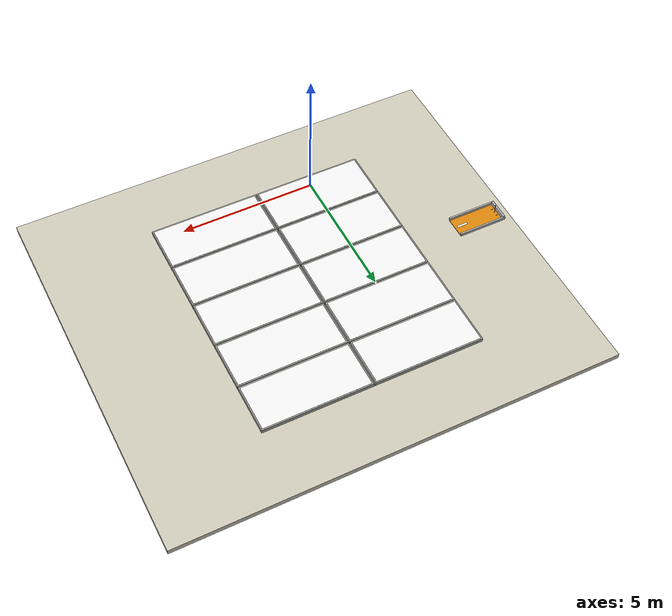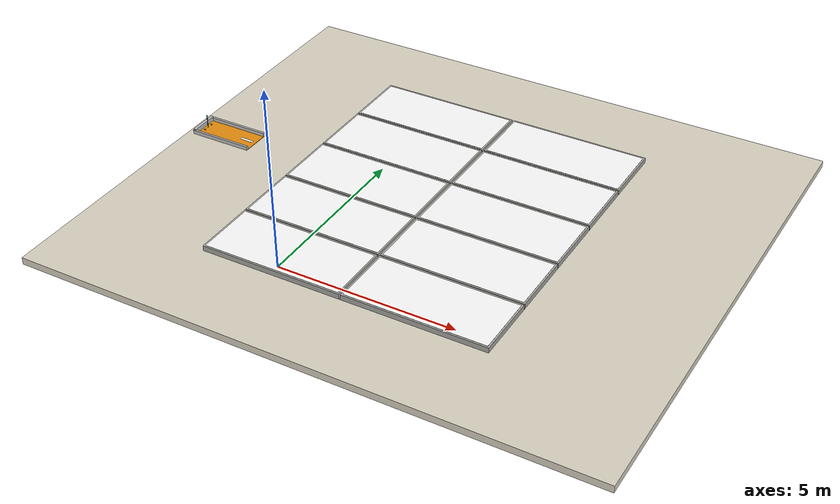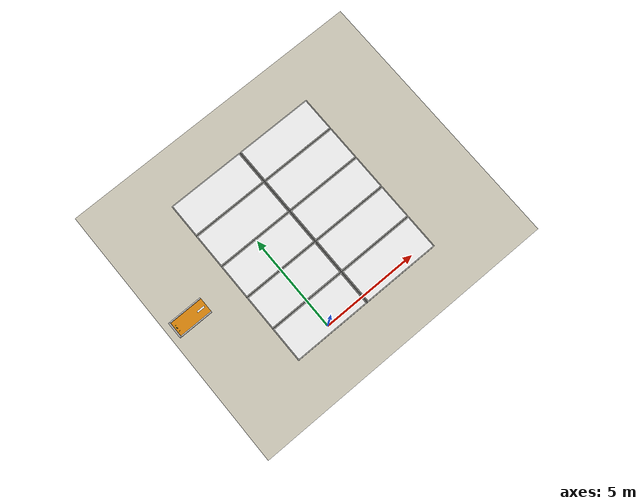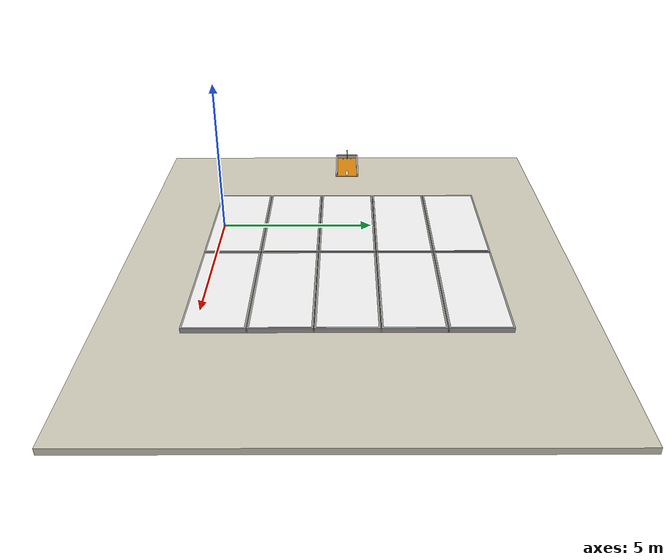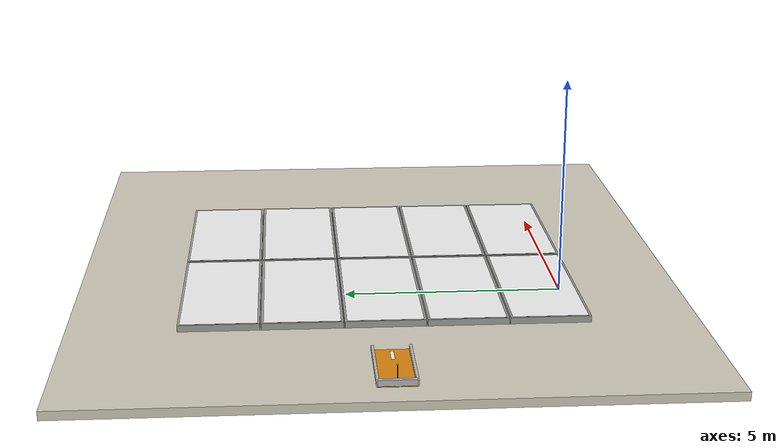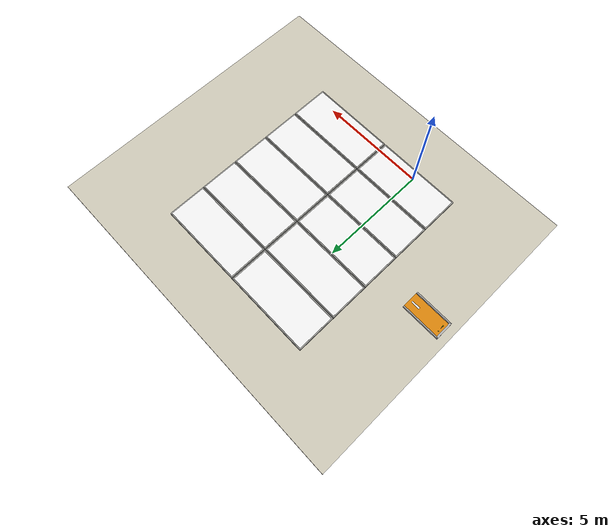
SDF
<?xml version="1.0"?>
<sdf version="1.9">
<world name="warehouse_rooftop">

  <plugin filename="gz-sim-physics-system"        name="gz::sim::systems::Physics"/>
  <plugin filename="gz-sim-user-commands-system" name="gz::sim::systems::UserCommands"/>
  <plugin filename="gz-sim-scene-broadcaster-system" name="gz::sim::systems::SceneBroadcaster"/>
  <plugin filename="gz-sim-sensors-system"       name="gz::sim::systems::Sensors">
    <render_engine>ogre2</render_engine>
  </plugin>
  <plugin filename="gz-sim-imu-system"           name="gz::sim::systems::Imu"/>
  <plugin filename="gz-sim-navsat-system"        name="gz::sim::systems::NavSat"/>

  <spherical_coordinates>
    <surface_model>EARTH_WGS84</surface_model>
    <latitude_deg>24.4539</latitude_deg>
    <longitude_deg>54.3773</longitude_deg>
    <elevation>0</elevation>
    <heading_deg>0</heading_deg>
  </spherical_coordinates>

  <gravity>0 0 -9.8</gravity>

  <light name="sun" type="directional">
    <cast_shadows>true</cast_shadows>
    <pose>0 0 10 0 0 0</pose>
    <diffuse>0.95 0.93 0.85 1</diffuse>
    <specular>0.25 0.24 0.20 1</specular>
    <direction>-0.3 0.1 -0.95</direction>
    <intensity>1.1</intensity>
  </light>
  <light name="sky_fill" type="directional">
    <direction>0 0 -1</direction>
    <diffuse>0.40 0.48 0.58 1</diffuse>
    <specular>0 0 0 1</specular>
    <intensity>0.35</intensity>
    <cast_shadows>false</cast_shadows>
  </light>

  <scene>
    <ambient>0.55 0.55 0.50 1</ambient>
    <background>0.70 0.80 0.95 1</background>
    <shadows>true</shadows>
    <grid>false</grid>
  </scene>

  <model name="ground_plane">
    <static>true</static>
    <link name="link">
      <collision name="collision">
        <geometry>
          <plane><normal>0 0 1</normal><size>100 100</size></plane>
        </geometry>
        <surface>
          <friction><ode><mu>0.8</mu><mu2>0.8</mu2></ode></friction>
        </surface>
      </collision>
    </link>
  </model>

  <!-- Warehouse roof top surface at z = 0.00 -->
  <model name="warehouse_roof">
    <static>true</static>
    <pose>2.2500 4.2000 -0.10 0 0 0</pose>
    <link name="link">
      <visual name="visual">
        <geometry><box><size>16.0 14.0 0.20</size></box></geometry>
        <material>
          <ambient>0.82 0.80 0.74 1</ambient>
          <diffuse>0.85 0.83 0.76 1</diffuse>
          <specular>0.04 0.04 0.04 1</specular>
        </material>
      </visual>
      <collision name="collision">
        <geometry><box><size>16.0 14.0 0.20</size></box></geometry>
        <surface>
          <friction>
            <ode><mu>0.8</mu><mu2>0.8</mu2></ode>
          </friction>
        </surface>
      </collision>
    </link>
  </model>

  <!-- COLUMN 1 (X = 0.0000 m)                                      -->

  <!-- ── panel_1 ── -->
  <model name="panel_1">
    <static>true</static>
    <pose>0.0000 0.5400 0.0750 0 0 0</pose>
    <link name="link">
      <visual name="frame_visual">
        <geometry><box><size>4.0 1.8 0.15</size></box></geometry>
        <material>
          <ambient>0.62 0.62 0.60 1</ambient>
          <diffuse>0.65 0.65 0.63 1</diffuse>
          <specular>0.4 0.4 0.4 1</specular>
        </material>
      </visual>
      <visual name="cell_visual">
        <pose>0 0 0.0760 0 0 0</pose>
        <geometry><box><size>3.90 1.70 0.002</size></box></geometry>
        <material>
          <ambient>1 1 1 1</ambient>
          <diffuse>1 1 1 1</diffuse>
          <specular>0.15 0.15 0.15 1</specular>
          <pbr>
            <metal>
              <albedo_map>../materials/textures/solar_panel_01_dust.png</albedo_map>
              <roughness>0.38</roughness>
              <metalness>0.08</metalness>
            </metal>
          </pbr>
        </material>
      </visual>
      <collision name="collision">
        <geometry><box><size>4.0 1.8 0.15</size></box></geometry>
        <surface>
          <friction><ode><mu>0.9</mu><mu2>0.9</mu2></ode></friction>
        </surface>
      </collision>
    </link>
  </model>

  <!-- Gap 1: Level with Roof (15 cm drop below panel surface) -->
  <model name="gap_1">
    <static>true</static>
    <pose>0.0000 1.4550 0.0001 0 0 0</pose>
    <link name="link">
      <visual name="visual">
        <geometry><box><size>4.0 0.03 0.0001</size></box></geometry>
        <material>
          <ambient>0.55 0.55 0.55 1</ambient>
          <diffuse>0.60 0.60 0.60 1</diffuse>
          <specular>0.1 0.1 0.1 1</specular>
          <pbr>
            <metal>
              <albedo_map>../materials/textures/gap_texture.png</albedo_map>
              <roughness>0.85</roughness>
              <metalness>0.02</metalness>
            </metal>
          </pbr>
        </material>
      </visual>
    </link>
  </model>

  <!-- ── panel_2 ── -->
  <model name="panel_2">
    <static>true</static>
    <pose>0.0000 2.3700 0.0750 0 0 0</pose>
    <link name="link">
      <visual name="frame_visual">
        <geometry><box><size>4.0 1.8 0.15</size></box></geometry>
        <material>
          <ambient>0.62 0.62 0.60 1</ambient>
          <diffuse>0.65 0.65 0.63 1</diffuse>
          <specular>0.4 0.4 0.4 1</specular>
        </material>
      </visual>
      <visual name="cell_visual">
        <pose>0 0 0.0760 0 0 0</pose>
        <geometry><box><size>3.90 1.70 0.002</size></box></geometry>
        <material>
          <ambient>1 1 1 1</ambient>
          <diffuse>1 1 1 1</diffuse>
          <specular>0.15 0.15 0.15 1</specular>
          <pbr>
            <metal>
              <albedo_map>../materials/textures/solar_panel_02_dust.png</albedo_map>
              <roughness>0.38</roughness>
              <metalness>0.08</metalness>
            </metal>
          </pbr>
        </material>
      </visual>
      <collision name="collision">
        <geometry><box><size>4.0 1.8 0.15</size></box></geometry>
        <surface>
          <friction><ode><mu>0.9</mu><mu2>0.9</mu2></ode></friction>
        </surface>
      </collision>
    </link>
  </model>

  <!-- Gap 2 -->
  <model name="gap_2">
    <static>true</static>
    <pose>0.0000 3.2850 0.0001 0 0 0</pose>
    <link name="link">
      <visual name="visual">
        <geometry><box><size>4.0 0.03 0.0001</size></box></geometry>
        <material>
          <ambient>0.55 0.55 0.55 1</ambient>
          <diffuse>0.60 0.60 0.60 1</diffuse>
          <specular>0.1 0.1 0.1 1</specular>
          <pbr>
            <metal>
              <albedo_map>../materials/textures/gap_texture.png</albedo_map>
              <roughness>0.85</roughness>
              <metalness>0.02</metalness>
            </metal>
          </pbr>
        </material>
      </visual>
    </link>
  </model>

  <!-- ── panel_3 (SPAWN ANCHOR AT Y = 4.2000 m) ── -->
  <model name="panel_3">
    <static>true</static>
    <pose>0.0000 4.2000 0.0750 0 0 0</pose>
    <link name="link">
      <visual name="frame_visual">
        <geometry><box><size>4.0 1.8 0.15</size></box></geometry>
        <material>
          <ambient>0.62 0.62 0.60 1</ambient>
          <diffuse>0.65 0.65 0.63 1</diffuse>
          <specular>0.4 0.4 0.4 1</specular>
        </material>
      </visual>
      <visual name="cell_visual">
        <pose>0 0 0.0760 0 0 0</pose>
        <geometry><box><size>3.90 1.70 0.002</size></box></geometry>
        <material>
          <ambient>1 1 1 1</ambient>
          <diffuse>1 1 1 1</diffuse>
          <specular>0.15 0.15 0.15 1</specular>
          <pbr>
            <metal>
              <albedo_map>../materials/textures/solar_panel_03_dust.png</albedo_map>
              <roughness>0.38</roughness>
              <metalness>0.08</metalness>
            </metal>
          </pbr>
        </material>
      </visual>
      <collision name="collision">
        <geometry><box><size>4.0 1.8 0.15</size></box></geometry>
        <surface>
          <friction><ode><mu>0.9</mu><mu2>0.9</mu2></ode></friction>
        </surface>
      </collision>
    </link>
  </model>

  <!-- Gap 3 -->
  <model name="gap_3">
    <static>true</static>
    <pose>0.0000 5.1150 0.0001 0 0 0</pose>
    <link name="link">
      <visual name="visual">
        <geometry><box><size>4.0 0.03 0.0001</size></box></geometry>
        <material>
          <ambient>0.55 0.55 0.55 1</ambient>
          <diffuse>0.60 0.60 0.60 1</diffuse>
          <specular>0.1 0.1 0.1 1</specular>
          <pbr>
            <metal>
              <albedo_map>../materials/textures/gap_texture.png</albedo_map>
              <roughness>0.85</roughness>
              <metalness>0.02</metalness>
            </metal>
          </pbr>
        </material>
      </visual>
    </link>
  </model>

  <!-- ── panel_4 ── -->
  <model name="panel_4">
    <static>true</static>
    <pose>0.0000 6.0300 0.0750 0 0 0</pose>
    <link name="link">
      <visual name="frame_visual">
        <geometry><box><size>4.0 1.8 0.15</size></box></geometry>
        <material>
          <ambient>0.62 0.62 0.60 1</ambient>
          <diffuse>0.65 0.65 0.63 1</diffuse>
          <specular>0.4 0.4 0.4 1</specular>
        </material>
      </visual>
      <visual name="cell_visual">
        <pose>0 0 0.0760 0 0 0</pose>
        <geometry><box><size>3.90 1.70 0.002</size></box></geometry>
        <material>
          <ambient>1 1 1 1</ambient>
          <diffuse>1 1 1 1</diffuse>
          <specular>0.15 0.15 0.15 1</specular>
          <pbr>
            <metal>
              <albedo_map>../materials/textures/solar_panel_04_dust.png</albedo_map>
              <roughness>0.38</roughness>
              <metalness>0.08</metalness>
            </metal>
          </pbr>
        </material>
      </visual>
      <collision name="collision">
        <geometry><box><size>4.0 1.8 0.15</size></box></geometry>
        <surface>
          <friction><ode><mu>0.9</mu><mu2>0.9</mu2></ode></friction>
        </surface>
      </collision>
    </link>
  </model>

  <!-- Gap 4 -->
  <model name="gap_4">
    <static>true</static>
    <pose>0.0000 6.9450 0.0001 0 0 0</pose>
    <link name="link">
      <visual name="visual">
        <geometry><box><size>4.0 0.03 0.0001</size></box></geometry>
        <material>
          <ambient>0.55 0.55 0.55 1</ambient>
          <diffuse>0.60 0.60 0.60 1</diffuse>
          <specular>0.1 0.1 0.1 1</specular>
          <pbr>
            <metal>
              <albedo_map>../materials/textures/gap_texture.png</albedo_map>
              <roughness>0.85</roughness>
              <metalness>0.02</metalness>
            </metal>
          </pbr>
        </material>
      </visual>
    </link>
  </model>

  <!-- ── panel_5 ── -->
  <model name="panel_5">
    <static>true</static>
    <pose>0.0000 7.8600 0.0750 0 0 0</pose>
    <link name="link">
      <visual name="frame_visual">
        <geometry><box><size>4.0 1.8 0.15</size></box></geometry>
        <material>
          <ambient>0.62 0.62 0.60 1</ambient>
          <diffuse>0.65 0.65 0.63 1</diffuse>
          <specular>0.4 0.4 0.4 1</specular>
        </material>
      </visual>
      <visual name="cell_visual">
        <pose>0 0 0.0760 0 0 0</pose>
        <geometry><box><size>3.90 1.70 0.002</size></box></geometry>
        <material>
          <ambient>1 1 1 1</ambient>
          <diffuse>1 1 1 1</diffuse>
          <specular>0.15 0.15 0.15 1</specular>
          <pbr>
            <metal>
              <albedo_map>../materials/textures/solar_panel_05_dust.png</albedo_map>
              <roughness>0.38</roughness>
              <metalness>0.08</metalness>
            </metal>
          </pbr>
        </material>
      </visual>
      <collision name="collision">
        <geometry><box><size>4.0 1.8 0.15</size></box></geometry>
        <surface>
          <friction><ode><mu>0.9</mu><mu2>0.9</mu2></ode></friction>
        </surface>
      </collision>
    </link>
  </model>

  <!-- COLUMN 2 (X = 4.1500 m)                                      -->

  <!-- ── panel_6 ── -->
  <model name="panel_6">
    <static>true</static>
    <pose>4.0500 0.5400 0.0750 0 0 0</pose>
    <link name="link">
      <visual name="frame_visual">
        <geometry><box><size>4.0 1.8 0.15</size></box></geometry>
        <material>
          <ambient>0.62 0.62 0.60 1</ambient>
          <diffuse>0.65 0.65 0.63 1</diffuse>
          <specular>0.4 0.4 0.4 1</specular>
        </material>
      </visual>
      <visual name="cell_visual">
        <pose>0 0 0.0760 0 0 0</pose>
        <geometry><box><size>3.90 1.70 0.002</size></box></geometry>
        <material>
          <ambient>1 1 1 1</ambient>
          <diffuse>1 1 1 1</diffuse>
          <specular>0.15 0.15 0.15 1</specular>
          <pbr>
            <metal>
              <albedo_map>../materials/textures/solar_panel_06_dust.png</albedo_map>
              <roughness>0.38</roughness>
              <metalness>0.08</metalness>
            </metal>
          </pbr>
        </material>
      </visual>
      <collision name="collision">
        <geometry><box><size>4.0 1.8 0.15</size></box></geometry>
        <surface>
          <friction><ode><mu>0.9</mu><mu2>0.9</mu2></ode></friction>
        </surface>
      </collision>
    </link>
  </model>

  <!-- Gap 5 -->
  <model name="gap_5">
    <static>true</static>
    <pose>4.0500 1.4550 0.0001 0 0 0</pose>
    <link name="link">
      <visual name="visual">
        <geometry><box><size>4.0 0.03 0.0001</size></box></geometry>
        <material>
          <ambient>0.55 0.55 0.55 1</ambient>
          <diffuse>0.60 0.60 0.60 1</diffuse>
          <specular>0.1 0.1 0.1 1</specular>
          <pbr>
            <metal>
              <albedo_map>../materials/textures/gap_texture.png</albedo_map>
              <roughness>0.85</roughness>
              <metalness>0.02</metalness>
            </metal>
          </pbr>
        </material>
      </visual>
    </link>
  </model>

  <!-- ── panel_7 ── -->
  <model name="panel_7">
    <static>true</static>
    <pose>4.0500 2.3700 0.0750 0 0 0</pose>
    <link name="link">
      <visual name="frame_visual">
        <geometry><box><size>4.0 1.8 0.15</size></box></geometry>
        <material>
          <ambient>0.62 0.62 0.60 1</ambient>
          <diffuse>0.65 0.65 0.63 1</diffuse>
          <specular>0.4 0.4 0.4 1</specular>
        </material>
      </visual>
      <visual name="cell_visual">
        <pose>0 0 0.0760 0 0 0</pose>
        <geometry><box><size>3.90 1.70 0.002</size></box></geometry>
        <material>
          <ambient>1 1 1 1</ambient>
          <diffuse>1 1 1 1</diffuse>
          <specular>0.15 0.15 0.15 1</specular>
          <pbr>
            <metal>
              <albedo_map>../materials/textures/solar_panel_07_dust.png</albedo_map>
              <roughness>0.38</roughness>
              <metalness>0.08</metalness>
            </metal>
          </pbr>
        </material>
      </visual>
      <collision name="collision">
        <geometry><box><size>4.0 1.8 0.15</size></box></geometry>
        <surface>
          <friction><ode><mu>0.9</mu><mu2>0.9</mu2></ode></friction>
        </surface>
      </collision>
    </link>
  </model>

  <!-- Gap 6 -->
  <model name="gap_6">
    <static>true</static>
    <pose>4.0500 3.2850 0.0001 0 0 0</pose>
    <link name="link">
      <visual name="visual">
        <geometry><box><size>4.0 0.03 0.0001</size></box></geometry>
        <material>
          <ambient>0.55 0.55 0.55 1</ambient>
          <diffuse>0.60 0.60 0.60 1</diffuse>
          <specular>0.1 0.1 0.1 1</specular>
          <pbr>
            <metal>
              <albedo_map>../materials/textures/gap_texture.png</albedo_map>
              <roughness>0.85</roughness>
              <metalness>0.02</metalness>
            </metal>
          </pbr>
        </material>
      </visual>
    </link>
  </model>

  <!-- ── panel_8 ── -->
  <model name="panel_8">
    <static>true</static>
    <pose>4.0500 4.2000 0.0750 0 0 0</pose>
    <link name="link">
      <visual name="frame_visual">
        <geometry><box><size>4.0 1.8 0.15</size></box></geometry>
        <material>
          <ambient>0.62 0.62 0.60 1</ambient>
          <diffuse>0.65 0.65 0.63 1</diffuse>
          <specular>0.4 0.4 0.4 1</specular>
        </material>
      </visual>
      <visual name="cell_visual">
        <pose>0 0 0.0760 0 0 0</pose>
        <geometry><box><size>3.90 1.70 0.002</size></box></geometry>
        <material>
          <ambient>1 1 1 1</ambient>
          <diffuse>1 1 1 1</diffuse>
          <specular>0.15 0.15 0.15 1</specular>
          <pbr>
            <metal>
              <albedo_map>../materials/textures/solar_panel_08_dust.png</albedo_map>
              <roughness>0.38</roughness>
              <metalness>0.08</metalness>
            </metal>
          </pbr>
        </material>
      </visual>
      <collision name="collision">
        <geometry><box><size>4.0 1.8 0.15</size></box></geometry>
        <surface>
          <friction><ode><mu>0.9</mu><mu2>0.9</mu2></ode></friction>
        </surface>
      </collision>
    </link>
  </model>

  <!-- Gap 7 -->
  <model name="gap_7">
    <static>true</static>
    <pose>4.0500 5.1150 0.0001 0 0 0</pose>
    <link name="link">
      <visual name="visual">
        <geometry><box><size>4.0 0.03 0.0001</size></box></geometry>
        <material>
          <ambient>0.55 0.55 0.55 1</ambient>
          <diffuse>0.60 0.60 0.60 1</diffuse>
          <specular>0.1 0.1 0.1 1</specular>
          <pbr>
            <metal>
              <albedo_map>../materials/textures/gap_texture.png</albedo_map>
              <roughness>0.85</roughness>
              <metalness>0.02</metalness>
            </metal>
          </pbr>
        </material>
      </visual>
    </link>
  </model>

  <!-- ── panel_9 ── -->
  <model name="panel_9">
    <static>true</static>
    <pose>4.0500 6.0300 0.0750 0 0 0</pose>
    <link name="link">
      <visual name="frame_visual">
        <geometry><box><size>4.0 1.8 0.15</size></box></geometry>
        <material>
          <ambient>0.62 0.62 0.60 1</ambient>
          <diffuse>0.65 0.65 0.63 1</diffuse>
          <specular>0.4 0.4 0.4 1</specular>
        </material>
      </visual>
      <visual name="cell_visual">
        <pose>0 0 0.0760 0 0 0</pose>
        <geometry><box><size>3.90 1.70 0.002</size></box></geometry>
        <material>
          <ambient>1 1 1 1</ambient>
          <diffuse>1 1 1 1</diffuse>
          <specular>0.15 0.15 0.15 1</specular>
          <pbr>
            <metal>
              <albedo_map>../materials/textures/solar_panel_09_dust.png</albedo_map>
              <roughness>0.38</roughness>
              <metalness>0.08</metalness>
            </metal>
          </pbr>
        </material>
      </visual>
      <collision name="collision">
        <geometry><box><size>4.0 1.8 0.15</size></box></geometry>
        <surface>
          <friction><ode><mu>0.9</mu><mu2>0.9</mu2></ode></friction>
        </surface>
      </collision>
    </link>
  </model>

  <!-- Gap 8 -->
  <model name="gap_8">
    <static>true</static>
    <pose>4.0500 6.9450 0.0001 0 0 0</pose>
    <link name="link">
      <visual name="visual">
        <geometry><box><size>4.0 0.03 0.0001</size></box></geometry>
        <material>
          <ambient>0.55 0.55 0.55 1</ambient>
          <diffuse>0.60 0.60 0.60 1</diffuse>
          <specular>0.1 0.1 0.1 1</specular>
          <pbr>
            <metal>
              <albedo_map>../materials/textures/gap_texture.png</albedo_map>
              <roughness>0.85</roughness>
              <metalness>0.02</metalness>
            </metal>
          </pbr>
        </material>
      </visual>
    </link>
  </model>

  <!-- ── panel_10 ── -->
  <model name="panel_10">
    <static>true</static>
    <pose>4.0500 7.8600 0.0750 0 0 0</pose>
    <link name="link">
      <visual name="frame_visual">
        <geometry><box><size>4.0 1.8 0.15</size></box></geometry>
        <material>
          <ambient>0.62 0.62 0.60 1</ambient>
          <diffuse>0.65 0.65 0.63 1</diffuse>
          <specular>0.4 0.4 0.4 1</specular>
        </material>
      </visual>
      <visual name="cell_visual">
        <pose>0 0 0.0760 0 0 0</pose>
        <geometry><box><size>3.90 1.70 0.002</size></box></geometry>
        <material>
          <ambient>1 1 1 1</ambient>
          <diffuse>1 1 1 1</diffuse>
          <specular>0.15 0.15 0.15 1</specular>
          <pbr>
            <metal>
              <albedo_map>../materials/textures/solar_panel_10_dust.png</albedo_map>
              <roughness>0.38</roughness>
              <metalness>0.08</metalness>
            </metal>
          </pbr>
        </material>
      </visual>
      <collision name="collision">
        <geometry><box><size>4.0 1.8 0.15</size></box></geometry>
        <surface>
          <friction><ode><mu>0.9</mu><mu2>0.9</mu2></ode></friction>
        </surface>
      </collision>
    </link>
  </model>

  <!-- Center Corridor Seam (X = 2.075 m) - Level with Roof -->
  <model name="col_gap">
    <static>true</static>
    <pose>2.0250 4.2000 0.0001 0 0 0</pose>
    <link name="link">
      <visual name="visual">
        <geometry><box><size>0.050 9.120 0.0001</size></box></geometry>
        <material>
          <ambient>0.55 0.55 0.55 1</ambient>
          <diffuse>0.60 0.60 0.60 1</diffuse>
          <specular>0.1 0.1 0.1 1</specular>
          <pbr>
            <metal>
              <albedo_map>../materials/textures/gap_texture.png</albedo_map>
              <roughness>0.85</roughness>
              <metalness>0.02</metalness>
            </metal>
          </pbr>
        </material>
      </visual>
    </link>
  </model>

  <!-- Docking Station Elevated to Match Panel Height -->
  <model name="docking_station">
    <static>true</static>
    <pose>-4.5000 4.2000 0.15 0 0 0</pose>
    <link name="dock_link">
      <visual name="floor_visual">
        <pose>0 0 0.010 0 0 0</pose>
        <geometry><box><size>1.80 0.80 0.020</size></box></geometry>
        <material><ambient>0.90 0.55 0.05 1</ambient><diffuse>0.90 0.55 0.05 1</diffuse></material>
      </visual>
      <collision name="floor_col">
        <pose>0 0 0.010 0 0 0</pose>
        <geometry><box><size>1.80 0.80 0.020</size></box></geometry>
      </collision>
      <visual name="rear_wall_visual">
        <pose>-0.86 0 0.08 0 0 0</pose>
        <geometry><box><size>0.08 0.80 0.14</size></box></geometry>
        <material><ambient>0.75 0.75 0.75 1</ambient><diffuse>0.75 0.75 0.75 1</diffuse></material>
      </visual>
      <collision name="rear_wall_col">
        <pose>-0.86 0 0.08 0 0 0</pose>
        <geometry><box><size>0.08 0.80 0.14</size></box></geometry>
      </collision>
      <visual name="left_wall_visual">
        <pose>0 0.40 0.065 0 0 0</pose>
        <geometry><box><size>1.80 0.06 0.11</size></box></geometry>
        <material><ambient>0.75 0.75 0.75 1</ambient><diffuse>0.75 0.75 0.75 1</diffuse></material>
      </visual>
      <collision name="left_wall_col">
        <pose>0 0.40 0.065 0 0 0</pose>
        <geometry><box><size>1.80 0.06 0.11</size></box></geometry>
      </collision>
      <visual name="right_wall_visual">
        <pose>0 -0.40 0.065 0 0 0</pose>
        <geometry><box><size>1.80 0.06 0.11</size></box></geometry>
        <material><ambient>0.75 0.75 0.75 1</ambient><diffuse>0.75 0.75 0.75 1</diffuse></material>
      </visual>
      <collision name="right_wall_col">
        <pose>0 -0.40 0.065 0 0 0</pose>
        <geometry><box><size>1.80 0.06 0.11</size></box></geometry>
      </collision>
      <visual name="contact_left_visual">
        <pose>-0.72 0.15 0.045 0 1.5708 0</pose>
        <geometry><cylinder><radius>0.015</radius><length>0.05</length></cylinder></geometry>
        <material><ambient>0.95 0.90 0.05 1</ambient><diffuse>0.95 0.90 0.05 1</diffuse><specular>1 1 1 1</specular></material>
      </visual>
      <visual name="contact_right_visual">
        <pose>-0.72 -0.15 0.045 0 1.5708 0</pose>
        <geometry><cylinder><radius>0.015</radius><length>0.05</length></cylinder></geometry>
        <material><ambient>0.95 0.90 0.05 1</ambient><diffuse>0.95 0.90 0.05 1</diffuse><specular>1 1 1 1</specular></material>
      </visual>
      <visual name="pole_visual">
        <pose>-0.72 0 0.20 0 0 0</pose>
        <geometry><cylinder><radius>0.010</radius><length>0.36</length></cylinder></geometry>
        <material><ambient>0.3 0.3 0.3 1</ambient><diffuse>0.3 0.3 0.3 1</diffuse></material>
      </visual>
      <visual name="light_visual">
        <pose>-0.72 0 0.40 0 0 0</pose>
        <geometry><sphere><radius>0.018</radius></sphere></geometry>
        <material><ambient>0.0 1.0 0.2 1</ambient><diffuse>0.0 1.0 0.2 1</diffuse><emissive>0.0 0.7 0.1 1</emissive></material>
      </visual>
      <visual name="arrow_visual">
        <pose>0.60 0 0.021 0 0 0</pose>
        <geometry><box><size>0.40 0.08 0.002</size></box></geometry>
        <material><ambient>1.0 1.0 1.0 1</ambient><diffuse>1.0 1.0 1.0 1</diffuse></material>
      </visual>
    </link>
  </model>

</world>
</sdf>
